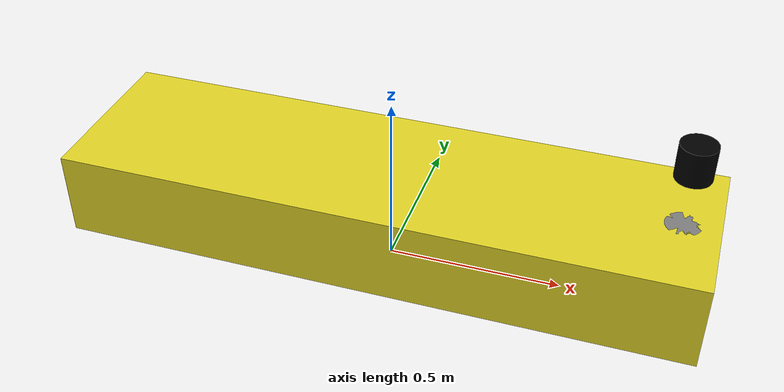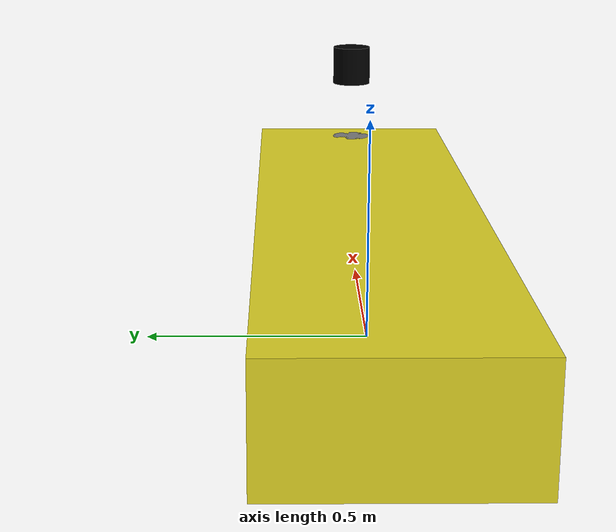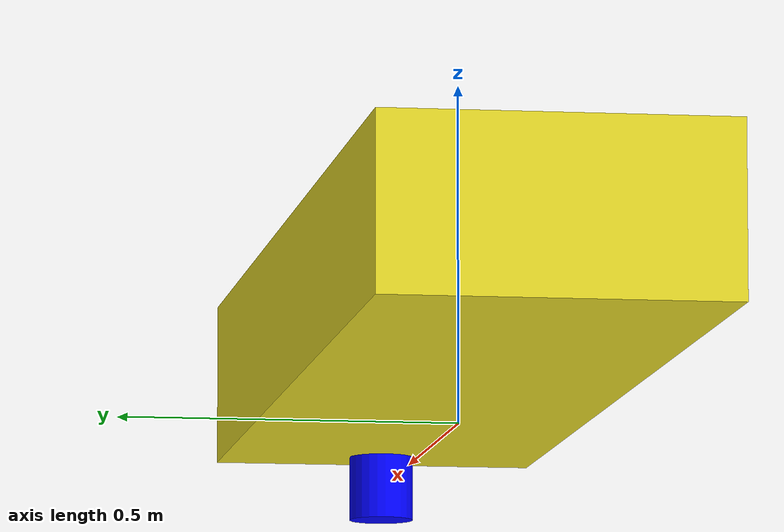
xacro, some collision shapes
<?xml version="1.0"?>
<robot xmlns:xacro="http://ros.org/wiki/xacro" name="myboat">
  <link name="myboat/base_link">
  </link>
  <joint name="myboat/dummy_joint" type="fixed">
    <parent link="myboat/base_link"/>
    <child link="myboat/dummy_link"/>
    <origin xyz="0 0 0.30" rpy="0 0 0"/>
  </joint>

  <link name="myboat/dummy_link">
    <visual>
      <origin xyz="0 0 0" rpy="0 0 0" />
      <geometry>
        <mesh filename="package://myboat_description/meshes/myboat_body.STL"/>
      </geometry>
      <material name="base_material">
        <diffuse>1.0 1.0 1.0</diffuse>
        <specular>1.0 1.0 1.0</specular>
        <pbr>
          <metal>
            <albedo_map>package://myboat_description/models/materials/textures/Boat_Albedo.png</albedo_map>
            <metalness_map>package://myboat_description/models/materials/textures/Boat_Metalness.png</metalness_map>
            <roughness_map>package://myboat_description/models/materials/textures/Boat_Roughness.png</roughness_map>
          </metal>
        </pbr>
        <script>
          <uri>package://myboat_description/models/materials/scripts/</uri>
          <uri>package://myboat_description/models/materials/textures/</uri>
          <name>UrbanTile/Boat_Diffuse</name>
        </script>
      </material>
    </visual>

    <collision name="collision">
      <geometry>
        <box size="1.8 0.5 0.25"/>
      </geometry>
      <origin xyz="0 0 -0.125" rpy="0 0 0"/>
    </collision>

    <inertial>
      <mass value="30.0"/>
      <inertia
        ixx="0.08"
        ixy="0.0"
        ixz="0.0"
        iyy="4.0"
        iyz="0.0"
        izz="4.1" />
    </inertial>
  </link>

  <gazebo reference="myboat/dummy_link">
    <material>Gazebo/Yellow</material>
  </gazebo>

  <link name="zju_link1">
    <visual>
      <origin xyz="0 0 0" rpy="0 0 0" />
      <geometry>
        <mesh filename="package://myboat_description/meshes/IMO2-ZJU.STL" scale="1.3 0.8 1.3"/>
      </geometry>
      <material name="whilte" />
    </visual>
  </link>

  <joint name="zju_joint1" type="fixed">
    <origin xyz="0.23 -0.22 -0.13" rpy="0 0 0" />
    <parent link="myboat/dummy_link"/>
    <child link="zju_link1"/>
  </joint>

  <link name="zju_link2">
    <visual>
      <origin xyz="0 0 0" rpy="0 0 0" />
      <geometry>
        <mesh filename="package://myboat_description/meshes/IMO2-ZJU.STL" scale="1.3 0.8 1.3"/>
      </geometry>
      <material name="whilte" />
    </visual>
  </link>

  <joint name="zju_joint2" type="fixed">
    <origin xyz="0.23 0.23 -0.13" rpy="0 0 3.14" />
    <parent link="myboat/dummy_link"/>
    <child link="zju_link2"/>
  </joint>

  <gazebo reference="zju_link1">
    <material>Gazebo/Black</material>
  </gazebo>

  <!--------===================== added lidar sensor =============================-->
  <link name="lidar_link">
    <visual>
      <origin xyz="0 0 0" rpy="0 0 0" />
      <geometry>
        <cylinder radius="0.05" length="0.1" />
      </geometry>
      <material name="black">
        <color rgba="0 0 0 1" />
      </material>
    </visual>
  </link>

  <!-----  fixed near the front of the boat (x=0.8), slightly above deck level (z=0.2) -->
  <joint name="lidar_joint" type="fixed">
    <origin xyz="0.8 0 0.2" rpy="0 0 0" />
    <parent link="myboat/dummy_link" />
    <child link="lidar_link" />
  </joint>

  <!-------  gazebo plugin publishing laser scans -->
  <gazebo reference="lidar_link">
    <sensor type="ray" name="lidar_sensor">
      <pose>0 0 0 0 0 0</pose>
      <visualize>true</visualize>
      <update_rate>10</update_rate>
      <ray>
        <scan>
          <horizontal>
            <samples>180</samples>
            <resolution>1</resolution>
            <min_angle>-1.570796</min_angle>
            <max_angle>1.570796</max_angle>
          </horizontal>
        </scan>
        <range>
          <min>0.3</min>
          <max>30.0</max>
          <resolution>0.01</resolution>
        </range>
      </ray>
      <plugin name="gazebo_ros_lidar_controller" filename="libgazebo_ros_laser.so">
        <topicName>/myboat/sensors/lidar/scan</topicName>
        <frameName>lidar_link</frameName>
      </plugin>
    </sensor>
  </gazebo>

  <!-------- lidar close to water level (very low) -->
  <link name="lidar_water_link">
    <visual>
      <origin xyz="0 0 0" rpy="0 0 0" />
      <geometry>
        <cylinder radius="0.05" length="0.1" />
      </geometry>
      <material name="blue">
        <color rgba="0 0 1 1" />
      </material>
    </visual>
  </link>

  <joint name="lidar_water_joint" type="fixed">
    <origin xyz="0.8 0 -0.3" rpy="0 0 0" />
    <parent link="myboat/dummy_link" />
    <child link="lidar_water_link" />
  </joint>

  <gazebo reference="lidar_water_link">
    <sensor type="ray" name="lidar_water_sensor">
      <pose>0 0 0 0 0 0</pose>
      <visualize>true</visualize>
      <update_rate>10</update_rate>
      <ray>
        <scan>
          <horizontal>
            <samples>180</samples>
            <resolution>1</resolution>
            <min_angle>-1.570796</min_angle>
            <max_angle>1.570796</max_angle>
          </horizontal>
        </scan>
        <range>
          <min>0.3</min>
          <max>30.0</max>
          <resolution>0.01</resolution>
        </range>
      </ray>
      <plugin name="gazebo_ros_lidar_water_controller" filename="libgazebo_ros_laser.so">
        <topicName>/myboat/sensors/lidar/scan_water</topicName>
        <frameName>lidar_water_link</frameName>
      </plugin>
    </sensor>
  </gazebo>

  <!--------  lidar around keel height -->
  <link name="lidar_keel_link">
    <visual>
      <origin xyz="0 0 0" rpy="0 0 0" />
      <geometry>
        <cylinder radius="0.05" length="0.1" />
      </geometry>
      <material name="gray">
        <color rgba="0.5 0.5 0.5 1" />
      </material>
    </visual>
  </link>

  <joint name="lidar_keel_joint" type="fixed">
    <origin xyz="0.8 0 -0.05" rpy="0 0 0" />
    <parent link="myboat/dummy_link" />
    <child link="lidar_keel_link" />
  </joint>

  <gazebo reference="lidar_keel_link">
    <sensor type="ray" name="lidar_keel_sensor">
      <pose>0 0 0 0 0 0</pose>
      <visualize>true</visualize>
      <update_rate>10</update_rate>
      <ray>
        <scan>
          <horizontal>
            <samples>180</samples>
            <resolution>1</resolution>
            <min_angle>-1.570796</min_angle>
            <max_angle>1.570796</max_angle>
          </horizontal>
        </scan>
        <range>
          <min>0.3</min>
          <max>30.0</max>
          <resolution>0.01</resolution>
        </range>
      </ray>
      <plugin name="gazebo_ros_lidar_keel_controller" filename="libgazebo_ros_laser.so">
        <topicName>/myboat/sensors/lidar/scan_keel</topicName>
        <frameName>lidar_keel_link</frameName>
      </plugin>
    </sensor>
  </gazebo>

  <!---------  lidar around mast height -->
  <link name="lidar_mast_link">
    <visual>
      <origin xyz="0 0 0" rpy="0 0 0" />
      <geometry>
        <cylinder radius="0.05" length="0.1" />
      </geometry>
      <material name="black">
        <color rgba="0 0 0 1" />
      </material>
    </visual>
  </link>

  <joint name="lidar_mast_joint" type="fixed">
    <origin xyz="0.8 0 0.20" rpy="0 0 0" />
    <parent link="myboat/dummy_link" />
    <child link="lidar_mast_link" />
  </joint>

  <gazebo reference="lidar_mast_link">
    <sensor type="ray" name="lidar_mast_sensor">
      <pose>0 0 0 0 0 0</pose>
      <visualize>true</visualize>
      <update_rate>10</update_rate>
      <ray>
        <scan>
          <horizontal>
            <samples>180</samples>
            <resolution>1</resolution>
            <min_angle>-1.570796</min_angle>
            <max_angle>1.570796</max_angle>
          </horizontal>
        </scan>
        <range>
          <min>0.3</min>
          <max>30.0</max>
          <resolution>0.01</resolution>
        </range>
      </ray>
      <plugin name="gazebo_ros_lidar_mast_controller" filename="libgazebo_ros_laser.so">
        <topicName>/myboat/sensors/lidar/scan_mast</topicName>
        <frameName>lidar_mast_link</frameName>
      </plugin>
    </sensor>
  </gazebo>
</robot>
